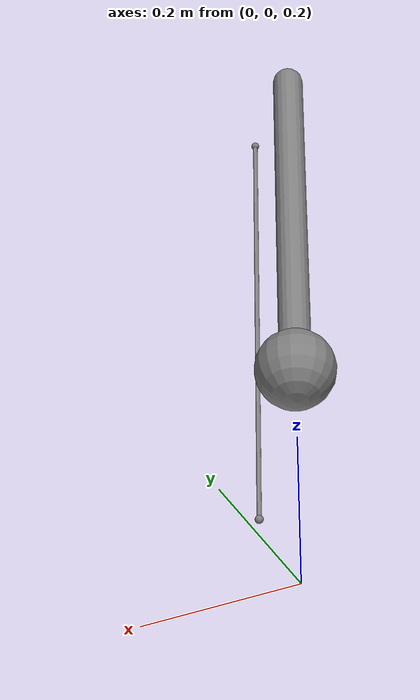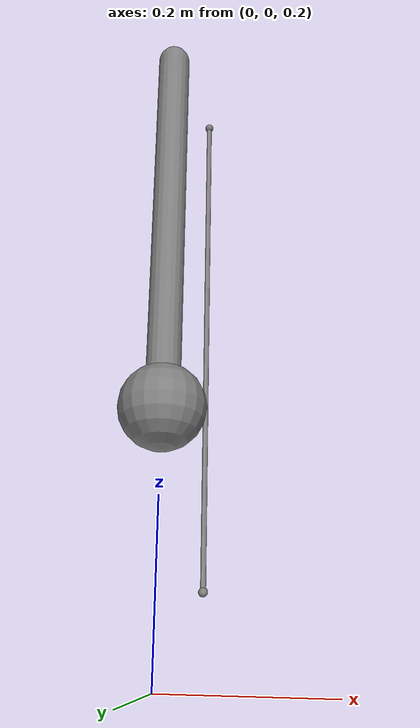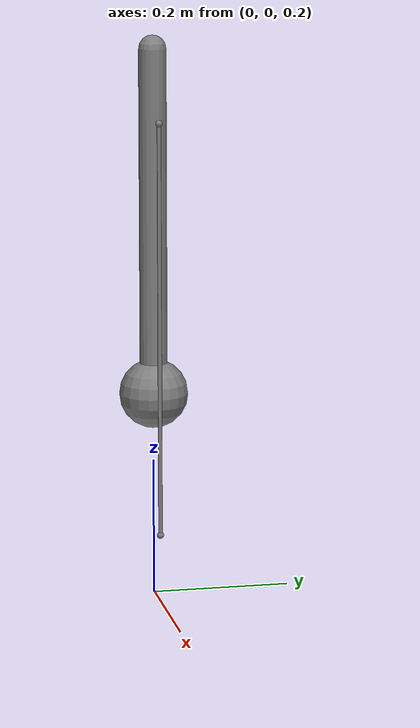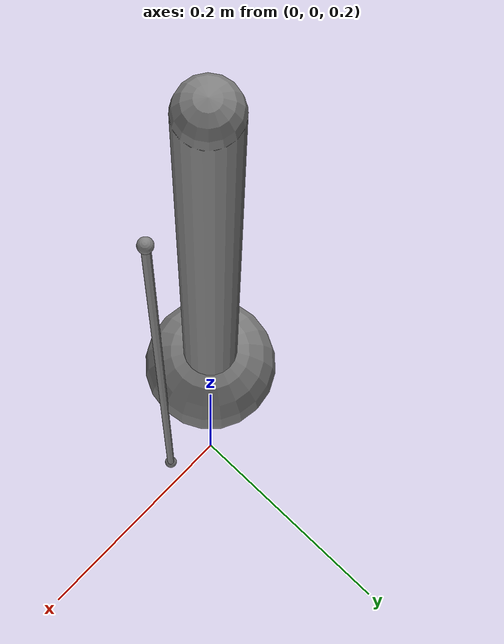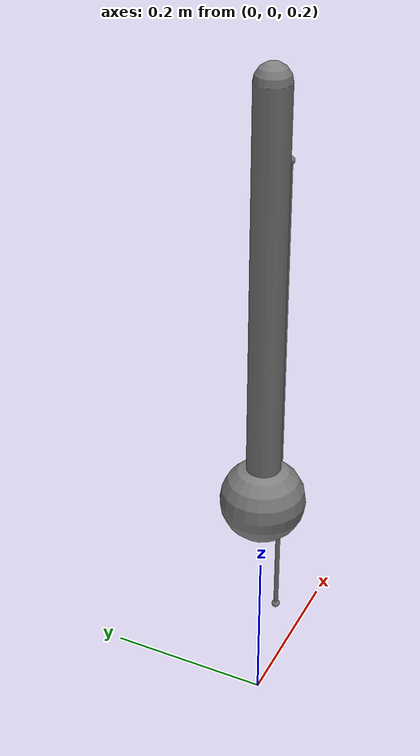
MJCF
<mujoco model="derived">
  <worldbody>
    <body name="a" pos="0 0 1">
      <joint name="j0" type="hinge" axis="0 1 0" damping="0.5" ref="0.3"/>
      <inertial pos="0 0 -0.25" mass="1" diaginertia="0.02 0.02 0.001"/>
      <geom name="rod" type="capsule" fromto="0 0 0 0 0 -0.5" size="0.02"/>
      <site name="s0" pos="0.05 0 -0.1"/>
      <body name="b" pos="0 0 -0.5">
        <joint name="j1" type="hinge" axis="0 1 0" stiffness="2"/>
        <inertial pos="0 0 -0.1" mass="0.5" diaginertia="0.005 0.005 0.001"/>
        <geom type="sphere" size="0.05"/>
        <site name="s1" pos="0.05 0 -0.2"/>
      </body>
    </body>
  </worldbody>
  <tendon>
    <fixed name="sum">
      <joint joint="j0" coef="1"/>
      <joint joint="j1" coef="0.5"/>
    </fixed>
    <spatial name="cable">
      <site site="s0"/>
      <site site="s1"/>
    </spatial>
  </tendon>
  <actuator>
    <muscle name="m" tendon="cable"/>
    <position name="p" joint="j0" kp="10" dampratio="1"/>
  </actuator>
</mujoco>
